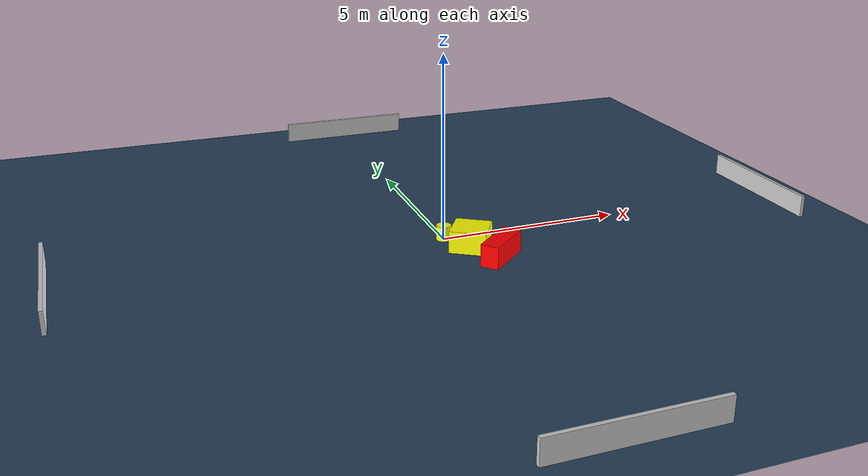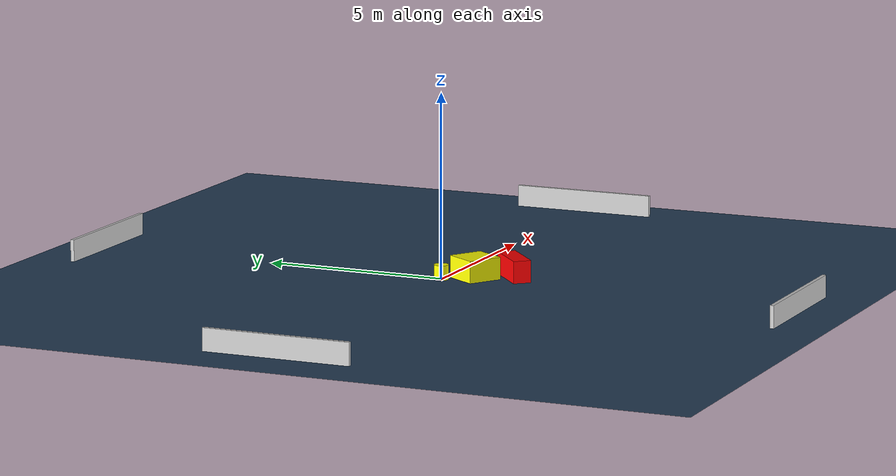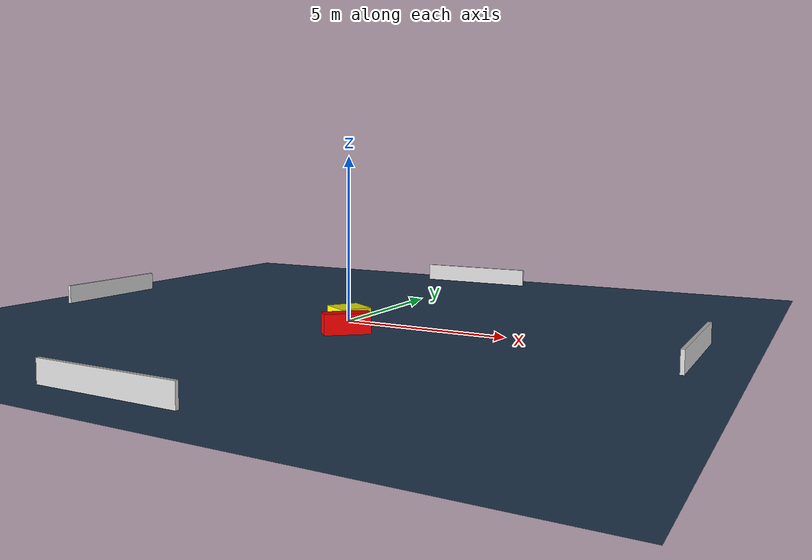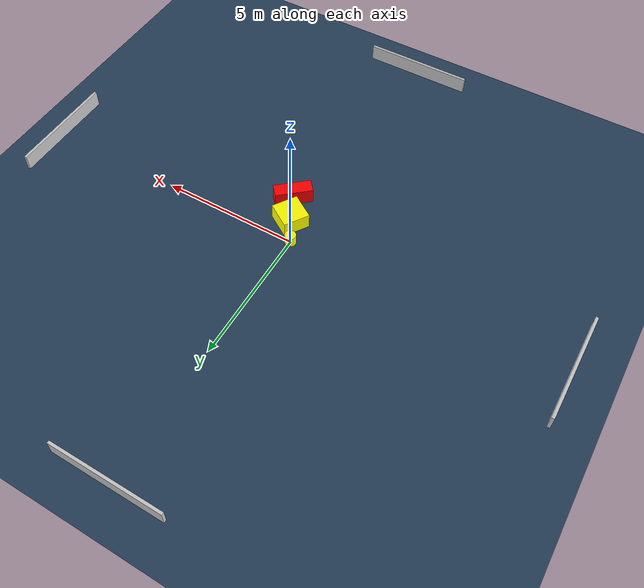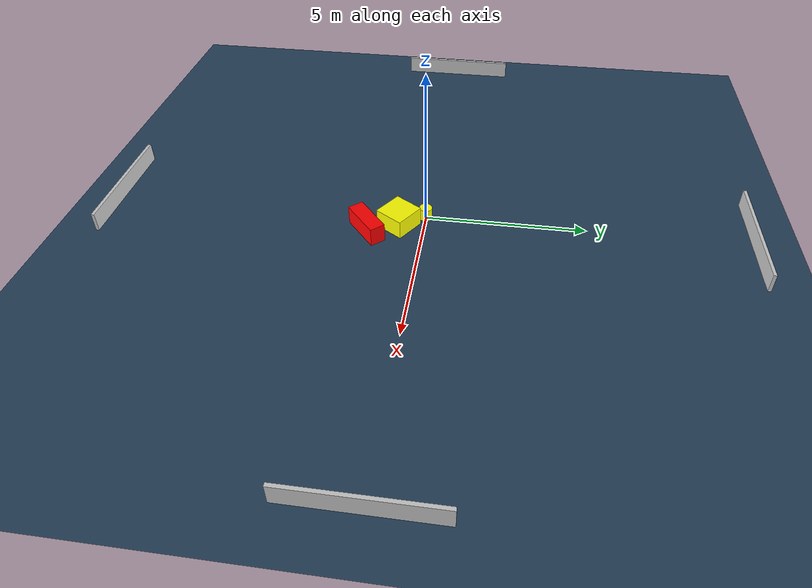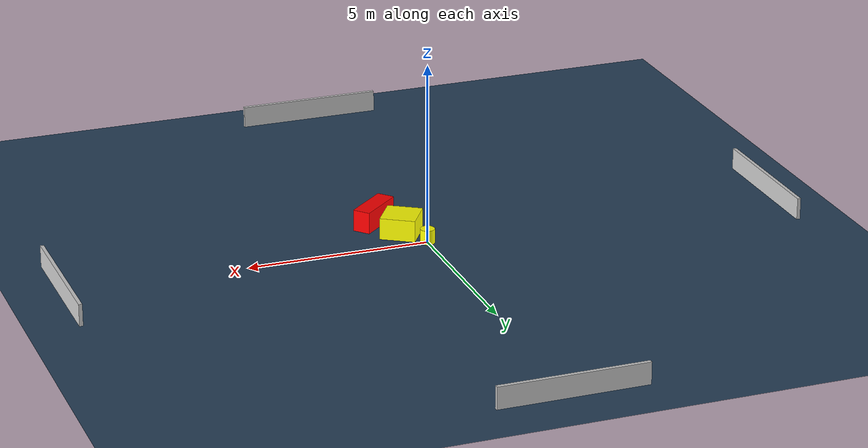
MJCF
<?xml version="1.0" ?>
<mujoco model="generated_environment">
  <option timestep="0.01" integrator="RK4" cone="elliptic"/>
  <default>
    <geom density="1"/>
  </default>
  <asset>
    <texture builtin="gradient" height="3072" name="skybox" rgb1="0.3 0.5 0.7" rgb2="0 0 0" type="skybox" width="512"/>
    <texture builtin="checker" height="300" name="groundplane" rgb1="0.2 0.3 0.4" rgb2="0.1 0.2 0.3" type="2d" width="300"/>
    <material name="groundplane" reflectance="0.2" texrepeat="5 5" texture="groundplane"/>
  </asset>
  <worldbody>
    <light dir="0 0 -1" directional="true" pos="0 0 1.5"/>
    <geom condim="3" friction="0.5 0.005 0.001" material="groundplane" name="floor" pos="0 0 0" size="0 0 0.05" type="plane"/>
    <body name="walls">
      <geom name="wall_1" condim="4" pos="-10.0 0.0 0.3" rgba="0.800000011920929 0.800000011920929 0.800000011920929 1.0" size="0.05 2.0 0.3" type="box"/>
      <geom name="wall_2" condim="4" pos="10.0 0.0 0.3" rgba="0.800000011920929 0.800000011920929 0.800000011920929 1.0" size="0.05 2.0 0.3" type="box"/>
      <geom name="wall_3" condim="4" pos="0.0 -10.0 0.3" rgba="0.800000011920929 0.800000011920929 0.800000011920929 1.0" size="2.0 0.05 0.3" type="box"/>
      <geom name="wall_4" condim="4" pos="0.0 10.0 0.3" rgba="0.800000011920929 0.800000011920929 0.800000011920929 1.0" size="2.0 0.05 0.3" type="box"/>
    </body>
    <body name="robot">
      <joint name="joint_x" type="slide" pos="0 0 0" axis="1 0 0"/>
      <joint name="joint_y" type="slide" pos="0 0 0" axis="0 1 0"/>
      <geom name="robot" type="cylinder" pos="0.0 0.0 0.2" size="0.2 0.2 0.0" mass="5.0" friction="1.0 0.005 0.0001" condim="4" rgba="1.0 1.0 0.0 1.0"/>
    </body>
    <body name="obstacle_1_movable">
      <geom name="obstacle_1_movable" condim="4" pos="0.46022447358393503 -0.7814274803929735 0.3" euler="0 0 237.24251001095107" friction="0.0 0.005 0.001" rgba="1.0 1.0 0.0 1.0" size="0.47925795172925206 0.48359727744102216 0.3" type="box" mass="0.1"/>
      <joint type="free"/>
    </body>
    <body name="obstacle_2_static">
      <geom name="obstacle_2_static" condim="4" pos="0.9139280776699394 -1.7107096602471776 0.3" euler="0 0 41.11772710363117" friction="0.0 0.005 0.001" rgba="1.0 0.0 0.0 1.0" size="0.6790924586516929 0.24463046318857468 0.3" type="box"/>
    </body>
  </worldbody>
  <actuator>
    <motor name="actuator_x" joint="joint_x" gear="1" ctrlrange="-1 1"/>
    <motor name="actuator_y" joint="joint_y" gear="1" ctrlrange="-1 1"/>
  </actuator>
</mujoco>
